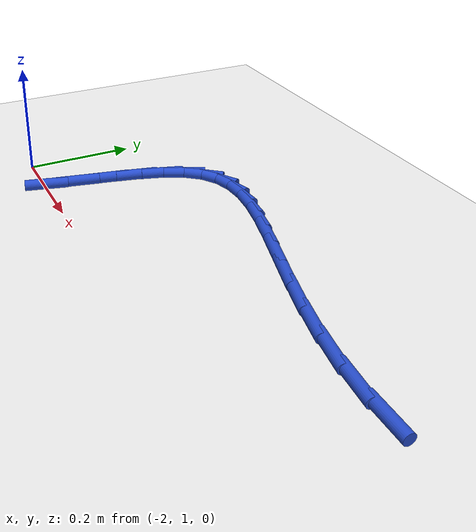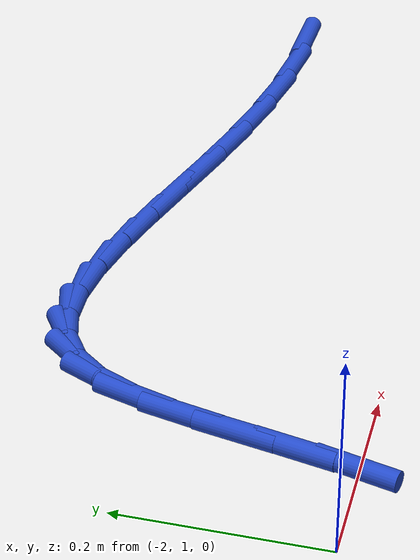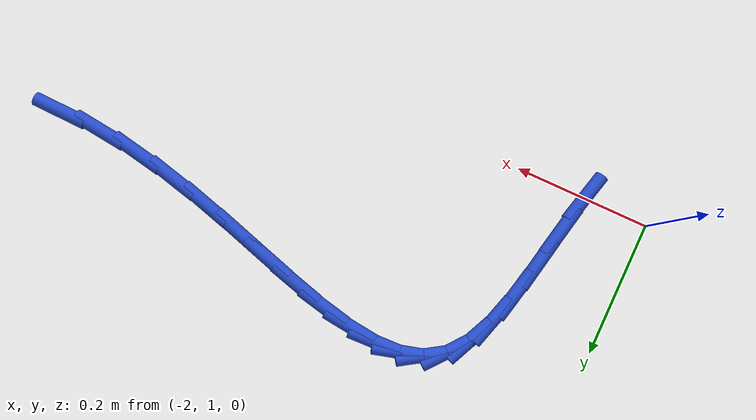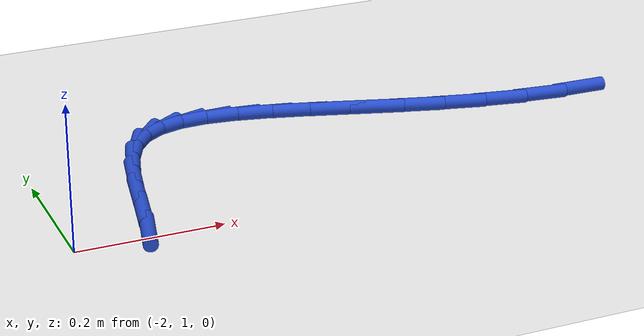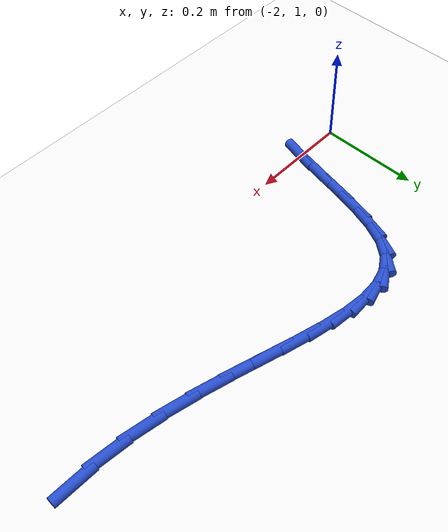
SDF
<sdf version="1.6">
 <world name="default">
  <model name="ground_plane">
   <static>1</static>
   <link name="link">
    <collision name="collision">
     <geometry><plane><normal>0 0 1</normal><size>100 100</size></plane></geometry>
     <surface><friction><ode><mu>100</mu><mu2>50</mu2></ode></friction></surface>
    </collision>
    <visual name="visual">
     <cast_shadows>0</cast_shadows>
     <geometry><plane><normal>0 0 1</normal><size>100 100</size></plane></geometry>
     <material>
      <script><uri>file://media/materials/scripts/gazebo.material</uri><name>Gazebo/WhiteGlow</name></script>
     </material>
    </visual>
   </link>
  </model>
  <model name="line">
   <link name="link_42">
    <pose>-1.1664167308378783 1.201340718505173 0.01 0 1.57 -0.023567856361768745</pose>
    <collision name="collision">
     <geometry><cylinder><radius>0.01</radius><length>0.08</length></cylinder></geometry>
    </collision>
    <visual name="visual">
     <material>
      <script><name>Gazebo/Blue</name><uri>file://media/materials/scripts/gazebo.material</uri></script>
     </material>
     <geometry><cylinder><radius>0.01</radius><length>0.08</length></cylinder></geometry>
    </visual>
   </link>
   <link name="link_43">
    <pose>-1.2304651441073151 1.2028504818492476 0.01 0 1.57 -0.1136625856904056</pose>
    <collision name="collision">
     <geometry><cylinder><radius>0.01</radius><length>0.08</length></cylinder></geometry>
    </collision>
    <visual name="visual">
     <material>
      <script><name>Gazebo/Blue</name><uri>file://media/materials/scripts/gazebo.material</uri></script>
     </material>
     <geometry><cylinder><radius>0.01</radius><length>0.08</length></cylinder></geometry>
    </visual>
   </link>
   <link name="link_44">
    <pose>-1.293374256770968 1.210031846716526 0.01 0 1.57 -0.18545086745416847</pose>
    <collision name="collision">
     <geometry><cylinder><radius>0.01</radius><length>0.08</length></cylinder></geometry>
    </collision>
    <visual name="visual">
     <material>
      <script><name>Gazebo/Blue</name><uri>file://media/materials/scripts/gazebo.material</uri></script>
     </material>
     <geometry><cylinder><radius>0.01</radius><length>0.08</length></cylinder></geometry>
    </visual>
   </link>
   <link name="link_45">
    <pose>-1.354804168426147 1.2215564997537771 0.01 0 1.57 -0.2392380259000711</pose>
    <collision name="collision">
     <geometry><cylinder><radius>0.01</radius><length>0.08</length></cylinder></geometry>
    </collision>
    <visual name="visual">
     <material>
      <script><name>Gazebo/Blue</name><uri>file://media/materials/scripts/gazebo.material</uri></script>
     </material>
     <geometry><cylinder><radius>0.01</radius><length>0.08</length></cylinder></geometry>
    </visual>
   </link>
   <link name="link_46">
    <pose>-1.4144149786701639 1.2360961276077704 0.01 0 1.57 -0.2752634387611954</pose>
    <collision name="collision">
     <geometry><cylinder><radius>0.01</radius><length>0.08</length></cylinder></geometry>
    </collision>
    <visual name="visual">
     <material>
      <script><name>Gazebo/Blue</name><uri>file://media/materials/scripts/gazebo.material</uri></script>
     </material>
     <geometry><cylinder><radius>0.01</radius><length>0.08</length></cylinder></geometry>
    </visual>
   </link>
   <link name="link_47">
    <pose>-1.4718667871003281 1.2523224169252742 0.01 0 1.57 -0.29310485521868407</pose>
    <collision name="collision">
     <geometry><cylinder><radius>0.01</radius><length>0.08</length></cylinder></geometry>
    </collision>
    <visual name="visual">
     <material>
      <script><name>Gazebo/Blue</name><uri>file://media/materials/scripts/gazebo.material</uri></script>
     </material>
     <geometry><cylinder><radius>0.01</radius><length>0.08</length></cylinder></geometry>
    </visual>
   </link>
   <link name="link_48">
    <pose>-1.5268196933139528 1.268907054353059 0.01 0 1.57 -0.29111243871311804</pose>
    <collision name="collision">
     <geometry><cylinder><radius>0.01</radius><length>0.08</length></cylinder></geometry>
    </collision>
    <visual name="visual">
     <material>
      <script><name>Gazebo/Blue</name><uri>file://media/materials/scripts/gazebo.material</uri></script>
     </material>
     <geometry><cylinder><radius>0.01</radius><length>0.08</length></cylinder></geometry>
    </visual>
   </link>
   <link name="link_49">
    <pose>-1.5789337969083475 1.2845217265378923 0.01 0 1.57 -0.265688489030506</pose>
    <collision name="collision">
     <geometry><cylinder><radius>0.01</radius><length>0.08</length></cylinder></geometry>
    </collision>
    <visual name="visual">
     <material>
      <script><name>Gazebo/Blue</name><uri>file://media/materials/scripts/gazebo.material</uri></script>
     </material>
     <geometry><cylinder><radius>0.01</radius><length>0.08</length></cylinder></geometry>
    </visual>
   </link>
   <link name="link_50">
    <pose>-1.6278691974808233 1.2978381201265443 0.01 0 1.57 -0.21020122273331251</pose>
    <collision name="collision">
     <geometry><cylinder><radius>0.01</radius><length>0.08</length></cylinder></geometry>
    </collision>
    <visual name="visual">
     <material>
      <script><name>Gazebo/Blue</name><uri>file://media/materials/scripts/gazebo.material</uri></script>
     </material>
     <geometry><cylinder><radius>0.01</radius><length>0.08</length></cylinder></geometry>
    </visual>
   </link>
   <link name="link_51">
    <pose>-1.6732859946286915 1.3075279217657834 0.01 0 1.57 -0.11344466511503097</pose>
    <collision name="collision">
     <geometry><cylinder><radius>0.01</radius><length>0.08</length></cylinder></geometry>
    </collision>
    <visual name="visual">
     <material>
      <script><name>Gazebo/Blue</name><uri>file://media/materials/scripts/gazebo.material</uri></script>
     </material>
     <geometry><cylinder><radius>0.01</radius><length>0.08</length></cylinder></geometry>
    </visual>
   </link>
   <link name="link_52">
    <pose>-1.7148442879492634 1.312262818102379 0.01 0 1.57 0.04141973717026323</pose>
    <collision name="collision">
     <geometry><cylinder><radius>0.01</radius><length>0.08</length></cylinder></geometry>
    </collision>
    <visual name="visual">
     <material>
      <script><name>Gazebo/Blue</name><uri>file://media/materials/scripts/gazebo.material</uri></script>
     </material>
     <geometry><cylinder><radius>0.01</radius><length>0.08</length></cylinder></geometry>
    </visual>
   </link>
   <link name="link_53">
    <pose>-1.752204177039849 1.3107144957831 0.01 0 1.57 0.2721555685332228</pose>
    <collision name="collision">
     <geometry><cylinder><radius>0.01</radius><length>0.08</length></cylinder></geometry>
    </collision>
    <visual name="visual">
     <material>
      <script><name>Gazebo/Blue</name><uri>file://media/materials/scripts/gazebo.material</uri></script>
     </material>
     <geometry><cylinder><radius>0.01</radius><length>0.08</length></cylinder></geometry>
    </visual>
   </link>
   <link name="link_54">
    <pose>-1.78502576149776 1.3015546414547157 0.01 0 1.57 0.5747761326183344</pose>
    <collision name="collision">
     <geometry><cylinder><radius>0.01</radius><length>0.08</length></cylinder></geometry>
    </collision>
    <visual name="visual">
     <material>
      <script><name>Gazebo/Blue</name><uri>file://media/materials/scripts/gazebo.material</uri></script>
     </material>
     <geometry><cylinder><radius>0.01</radius><length>0.08</length></cylinder></geometry>
    </visual>
   </link>
   <link name="link_55">
    <pose>-1.8129691409203068 1.2834549417639949 0.01 0 1.57 0.8952498651201162</pose>
    <collision name="collision">
     <geometry><cylinder><radius>0.01</radius><length>0.08</length></cylinder></geometry>
    </collision>
    <visual name="visual">
     <material>
      <script><name>Gazebo/Blue</name><uri>file://media/materials/scripts/gazebo.material</uri></script>
     </material>
     <geometry><cylinder><radius>0.01</radius><length>0.08</length></cylinder></geometry>
    </visual>
   </link>
   <link name="link_56">
    <pose>-1.8356968674038447 1.2550921497712753 0.01 0 1.57 1.1437435690401714</pose>
    <collision name="collision">
     <geometry><cylinder><radius>0.01</radius><length>0.08</length></cylinder></geometry>
    </collision>
    <visual name="visual">
     <material>
      <script><name>Gazebo/Blue</name><uri>file://media/materials/scripts/gazebo.material</uri></script>
     </material>
     <geometry><cylinder><radius>0.01</radius><length>0.08</length></cylinder></geometry>
    </visual>
   </link>
   <link name="link_57">
    <pose>-1.8533892962799696 1.2162127051262561 0.01 0 1.57 1.2829893116486195</pose>
    <collision name="collision">
     <geometry><cylinder><radius>0.01</radius><length>0.08</length></cylinder></geometry>
    </collision>
    <visual name="visual">
     <material>
      <script><name>Gazebo/Blue</name><uri>file://media/materials/scripts/gazebo.material</uri></script>
     </material>
     <geometry><cylinder><radius>0.01</radius><length>0.08</length></cylinder></geometry>
    </visual>
   </link>
   <link name="link_58">
    <pose>-1.8673810276956342 1.1689475057357284 0.01 0 1.57 1.3528453523240942</pose>
    <collision name="collision">
     <geometry><cylinder><radius>0.01</radius><length>0.08</length></cylinder></geometry>
    </collision>
    <visual name="visual">
     <material>
      <script><name>Gazebo/Blue</name><uri>file://media/materials/scripts/gazebo.material</uri></script>
     </material>
     <geometry><cylinder><radius>0.01</radius><length>0.08</length></cylinder></geometry>
    </visual>
   </link>
   <link name="link_59">
    <pose>-1.8791626772312728 1.1157497488000603 0.01 0 1.57 1.3780406095152178</pose>
    <collision name="collision">
     <geometry><cylinder><radius>0.01</radius><length>0.08</length></cylinder></geometry>
    </collision>
    <visual name="visual">
     <material>
      <script><name>Gazebo/Blue</name><uri>file://media/materials/scripts/gazebo.material</uri></script>
     </material>
     <geometry><cylinder><radius>0.01</radius><length>0.08</length></cylinder></geometry>
    </visual>
   </link>
   <link name="link_60">
    <pose>-1.8902248604673204 1.0590726315196173 0.01 0 1.57 1.368528544960826</pose>
    <collision name="collision">
     <geometry><cylinder><radius>0.01</radius><length>0.08</length></cylinder></geometry>
    </collision>
    <visual name="visual">
     <material>
      <script><name>Gazebo/Blue</name><uri>file://media/materials/scripts/gazebo.material</uri></script>
     </material>
     <geometry><cylinder><radius>0.01</radius><length>0.08</length></cylinder></geometry>
    </visual>
   </link>
   <link name="link_61">
    <pose>-1.9020581929842115 1.0013693510947663 0.01 0 1.57 1.3253822828104822</pose>
    <collision name="collision">
     <geometry><cylinder><radius>0.01</radius><length>0.08</length></cylinder></geometry>
    </collision>
    <visual name="visual">
     <material>
      <script><name>Gazebo/Blue</name><uri>file://media/materials/scripts/gazebo.material</uri></script>
     </material>
     <geometry><cylinder><radius>0.01</radius><length>0.08</length></cylinder></geometry>
    </visual>
   </link>
  </model>
 </world>
</sdf>
